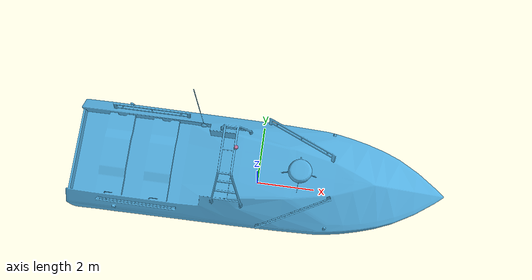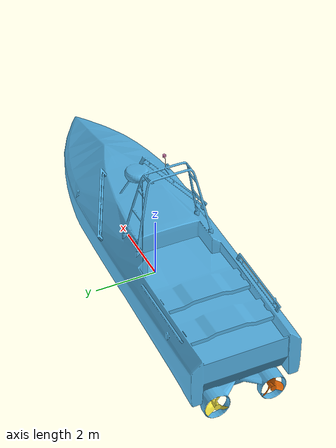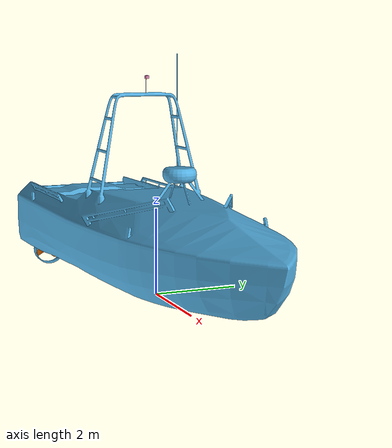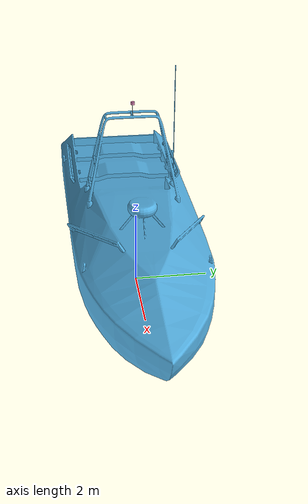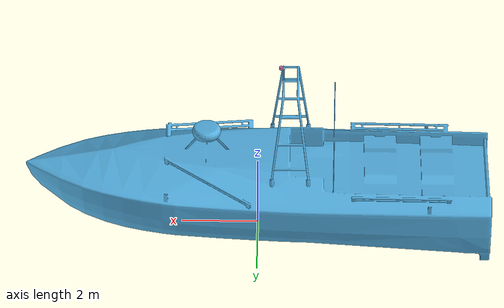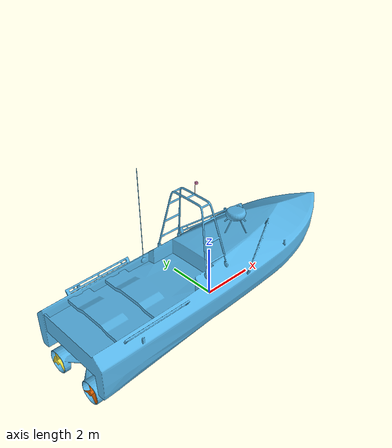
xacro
<?xml version="1.0"?>
<robot xmlns:xacro="http://ros.org/wiki/xacro" name="cora">

  <!-- Arguments and Parameters -->
  <xacro:arg name="camera_namespace" default="cameras/"/>
  <xacro:arg name="sensor_namespace" default="sensors/"/>
  <xacro:arg name="pinger_namespace" default="pingers/"/>
  <xacro:property name="camera_namespace" value="$(arg camera_namespace)" scope="global" />
  <xacro:property name="sensor_namespace" value="$(arg sensor_namespace)" scope="global" />
  <xacro:property name="pinger_namespace" value="$(arg pinger_namespace)" scope="global" />

  <!-- Note: this is only used for some sensors that do not correctly use the
  robotNamespace parameter -->
  <xacro:arg name="namespace" default="cora"/>
  <xacro:property name="namespace" value="$(arg namespace)" scope="global" />

  <!-- Thrusters mess this up - so this is hack - TODO Fix! -->
  <xacro:arg name="root_namespace" default=""/>
  <xacro:property name="root_namespace" value="$(arg root_namespace)" scope="global" />
  <xacro:arg name="thruster_namespace" default="thrusters/"/>
  <xacro:property name="thruster_namespace" value="$(arg thruster_namespace)" scope="global" />

  <xacro:arg name="tf_prefix" default="cora1" />
  <xacro:property name="tf_prefix" value="$(arg tf_prefix)" scope="global" />

  <!-- Robot mesh -->
  <xacro:include filename="$(find mrc_examples)/urdf/cora.urdf.xacro" />

  <!-- Hydrodynamics plugin -->
  <xacro:include filename="$(find mrc_examples)/urdf/cora_dynamics_plugin.xacro" />
  <xacro:usv_dynamics_gazebo name="cora_dynamics_plugin" />

  <!-- Thrusters -->
  <xacro:include filename="$(find mrc_examples)/urdf/thrusters.xacro" />

  <gazebo>
    <plugin name="p3d_plugin_cora" filename="libgazebo_ros_p3d.so">
      <bodyName>${tf_prefix}/cora/base_link</bodyName>
      <frameName>world</frameName>
      <updateRate>10.0</updateRate>
      <topicName>cora/sensors/p3d</topicName>
      <xyzOffset>0 0 0</xyzOffset>
      <rpyOffset>0 0 0</rpyOffset>
      <gaussianNoise>0</gaussianNoise>
    </plugin>
  </gazebo>

  <!-- Lidar -->
  <xacro:include filename="$(find mrc_examples)/urdf/cora_3d_lidar.xacro"/>
  <xacro:cora_3d_lidar name="lidar"
                           x="-0.595" y="0" z="5"
                           R="0" P="${radians(0)}" Y="0"
                           post_Y="0" post_z_from="4.6"
                           vertical_lasers="16"/>

</robot>

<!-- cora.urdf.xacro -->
<robot xmlns:xacro="http://ros.org/wiki/xacro" name="cora">

  <link name="${tf_prefix}/cora/base_link">
  </link>

  <joint name="${tf_prefix}/cora/dummy_joint" type="fixed">
    <parent link="${tf_prefix}/cora/base_link"/>
    <child link="${tf_prefix}/cora/dummy_link"/>
    <!-- Adjust the visual/collision to match water height -->
    <origin xyz="0 0 1" rpy="0 0 0"/>
  </joint>

  <link name="${tf_prefix}/cora/dummy_link">
    <visual>
      <origin xyz="0 0 0" rpy="0 0 0" />
      <geometry>
        <mesh filename="package://cora_description/models/meshes/base.dae"/>
      </geometry>
      <material name="base_material">
        <diffuse>1.0 1.0 1.0</diffuse>
        <specular>1.0 1.0 1.0</specular>
        <pbr>
          <metal>
            <albedo_map>package://cora_description/models/materials/textures/Boat_Albedo.png</albedo_map>
            <metalness_map>package://cora_description/models/materials/textures/Boat_Metalness.png</metalness_map>
            <roughness_map>package://cora_description/models/materials/textures/Boat_Roughness.png</roughness_map>
          </metal>
        </pbr>
        <!-- fallback to script if no PBR support-->
        <script>
          <uri>package://cora_description/models/materials/scripts/</uri>
          <uri>package://cora_description/models/materials/textures/</uri>
          <name>UrbanTile/Boat_Diffuse</name>
        </script>
      </material>
    </visual>

    <collision name="collision">
      <geometry>
        <box size="12.21 3.58 2.84" />
      </geometry>
    </collision>

    <inertial>
       <mass value="33000.0"/>
       <inertia ixx="20700.0" ixy="0.0" ixz="0.0" iyy="420000.0" iyz="0.0" izz="420000.0"/>
    </inertial>
  </link>

</robot>

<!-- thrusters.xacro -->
<robot xmlns:xacro="http://ros.org/wiki/xacro">

  <!-- Dummy link, which usv_gazebo_thrust_plugin looks for -->
  <link name="${tf_prefix}/${namespace}/left_engine_link">
    <inertial>
      <mass value="0.1"/>
      <inertia ixx="0.00889245" ixy="0.0" ixz="0.0" iyy="0.00911125" iyz="0.0" izz="0.00078125"/>
    </inertial>
  </link>

  <!-- No additional collision, since propeller is inside robot body -->
  <link name="${tf_prefix}/${namespace}/left_propeller_link">
    <visual>
      <geometry>
        <mesh filename="package://cora_description/models/meshes/propellerL.dae"/>
      </geometry>
      <material name="left_propeller_material">
        <diffuse>1.0 1.0 1.0</diffuse>
        <specular>1.0 1.0 1.0</specular>
        <pbr>
          <metal>
            <albedo_map>package://cora_description/models/materials/textures/Boat_Albedo.png</albedo_map>
            <metalness_map>package://cora_description/models/materials/textures/Boat_Metalness.png</metalness_map>
            <roughness_map>package://cora_description/models/materials/textures/Boat_Roughness.png</roughness_map>
          </metal>
        </pbr>
        <!-- fallback to script if no PBR support-->
        <script>
          <uri>package://cora_description/models/materials/scripts/</uri>
          <uri>package://cora_description/models/materials/textures/</uri>
          <name>UrbanTile/Boat_Diffuse</name>
        </script>
      </material>
    </visual>
    <inertial>
      <mass value="0.5"/>
      <inertia ixx="0.008545" ixy="0.0" ixz="0.0" iyy="0.008545" iyz="0.0" izz="0.0144"/>
    </inertial>
  </link>

  <!-- Dummy joint, which usv_gazebo_thrust_plugin looks for -->
  <joint name="${tf_prefix}/${namespace}/left_chasis_engine_joint" type="revolute">
    <axis xyz="0 0 1"/>
    <origin rpy="0 0 0" xyz="-6.103 0.911 0.016"/>
    <parent link="${tf_prefix}/${namespace}/base_link"/>
    <child link="${tf_prefix}/${namespace}/left_engine_link"/>
    <limit lower="${-pi}" upper="${pi}" effort="10" velocity="10"/>
  </joint>

  <joint name="${tf_prefix}/${namespace}/left_engine_propeller_joint" type="continuous">
    <axis rpy="0 0 0" xyz="1 0 0"/>
    <origin xyz="0 0 0" rpy="0 0 0"/>
    <parent link="${tf_prefix}/${namespace}/left_engine_link"/>
    <child link="${tf_prefix}/${namespace}/left_propeller_link"/>
    <limit effort="100" velocity="100" />
    <dynamics friction="0.05" damping="0.05" />
  </joint>

  <!-- Dummy link, which usv_gazebo_thrust_plugin looks for -->
  <link name="${tf_prefix}/${namespace}/right_engine_link">
    <inertial>
      <mass value="0.1"/>
      <inertia ixx="0.00889245" ixy="0.0" ixz="0.0" iyy="0.00911125" iyz="0.0" izz="0.00078125"/>
    </inertial>
  </link>

  <!-- No additional collision, since propeller is inside robot body -->
  <link name="${tf_prefix}/${namespace}/right_propeller_link">
    <visual>
      <geometry>
        <mesh filename="package://cora_description/models/meshes/propellerR.dae"/>
      </geometry>
      <material name="right_propeller_material">
        <diffuse>1.0 1.0 1.0</diffuse>
        <specular>1.0 1.0 1.0</specular>
        <pbr>
          <metal>
            <albedo_map>package://cora_description/models/materials/textures/Boat_Albedo.png</albedo_map>
            <metalness_map>package://cora_description/models/materials/textures/Boat_Metalness.png</metalness_map>
            <roughness_map>package://cora_description/models/materials/textures/Boat_Roughness.png</roughness_map>
          </metal>
        </pbr>
        <!-- fallback to script if no PBR support-->
        <script>
          <uri>package://cora_description/models/materials/scripts/</uri>
          <uri>package://cora_description/models/materials/textures/</uri>
          <name>UrbanTile/Boat_Diffuse</name>
        </script>
      </material>
    </visual>
    <inertial>
      <mass value="0.5"/>
      <inertia ixx="0.008545" ixy="0.0" ixz="0.0" iyy="0.008545" iyz="0.0" izz="0.0144"/>
    </inertial>
  </link>

  <!-- Dummy joint, which usv_gazebo_thrust_plugin looks for -->
  <joint name="${tf_prefix}/${namespace}/right_chasis_engine_joint" type="revolute">
    <axis xyz="0 0 1"/>
    <origin rpy="0 0 0" xyz="-6.103 -0.911 0.016"/>
    <parent link="${tf_prefix}/${namespace}/base_link"/>
    <child link="${tf_prefix}/${namespace}/right_engine_link"/>
    <limit lower="${-pi}" upper="${pi}" effort="10" velocity="10"/>
  </joint>

  <joint name="${tf_prefix}/${namespace}/right_engine_propeller_joint" type="continuous">
    <axis rpy="0 0 0" xyz="1 0 0"/>
    <origin xyz="0 0 0" rpy="0 0 0"/>
    <parent link="${tf_prefix}/${namespace}/right_engine_link"/>
    <child link="${tf_prefix}/${namespace}/right_propeller_link"/>
    <limit effort="100" velocity="100" />
    <dynamics friction="0.05" damping="0.05" />
  </joint>

  <gazebo>
    <plugin name="cora_gazebo_thrust" filename="libusv_gazebo_thrust_plugin.so">
      <cmdTimeout>1.0</cmdTimeout>
      <!-- Left -->
      <thruster>
	<!-- Required Parameters -->
	<linkName>${tf_prefix}/${namespace}/left_propeller_link</linkName>
	<propJointName>${tf_prefix}/${namespace}/left_engine_propeller_joint</propJointName>
	<engineJointName>${tf_prefix}/${namespace}/left_chasis_engine_joint</engineJointName>
	<cmdTopic>${namespace}/${thruster_namespace}/left_thrust_cmd</cmdTopic>
	<angleTopic>${namespace}/${thruster_namespace}/left_thrust_angle</angleTopic>
	<enableAngle>false</enableAngle>
	<!-- Optional Parameters -->
	<mappingType>0</mappingType>
	<maxCmd>1.0</maxCmd>
	<maxForceFwd>120000.0</maxForceFwd>
	<maxForceRev>-50000.0</maxForceRev>
	<maxAngle>${pi/2}</maxAngle>
      </thruster>

      <!-- Right -->
      <thruster>
	<!-- Required Parameters -->
	<linkName>${tf_prefix}/${namespace}/right_propeller_link</linkName>
	<propJointName>${tf_prefix}/${namespace}/right_engine_propeller_joint</propJointName>
	<engineJointName>${tf_prefix}/${namespace}/right_chasis_engine_joint</engineJointName>
	<cmdTopic>${namespace}/${thruster_namespace}/right_thrust_cmd</cmdTopic>
	<angleTopic>${namespace}/${thruster_namespace}/right_thrust_angle</angleTopic>
	<enableAngle>false</enableAngle>
	<!-- Optional Parameters -->
	<mappingType>0</mappingType>
	<maxCmd>1.0</maxCmd>
	<maxForceFwd>120000.0</maxForceFwd>
	<maxForceRev>-50000.0</maxForceRev>
	<maxAngle>${pi/2}</maxAngle>
      </thruster>

    </plugin>
  </gazebo>

</robot>

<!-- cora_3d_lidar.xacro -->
<robot xmlns:xacro="http://ros.org/wiki/xacro">
  <xacro:macro name="cora_3d_lidar" params="name
                                            x:=0.7 y:=0 z:=1.8
                                            R:=0 P:=0 Y:=0
                                            post_Y:=0 post_z_from:=1.2965
                                            update_rate:=10 vertical_lasers:=16 samples:=1875 resolution:=0.1
                                            min_angle:=${-pi} max_angle:=${pi}
                                            min_vertical_angle:=${-pi/12} max_vertical_angle:=${pi/12}
                                            max_range:=130 noise_stddev:=0.01">
    <!-- Define length variables for link positioning -->
    <xacro:property name="platform_z" value="${post_z_from}"/>
    <xacro:property name="post_to_post_arm_x" value="0.03"/>
    <xacro:property name="post_arm_to_lidar_x" value="0.04"/>
    <xacro:property name="post_arm_to_lidar_z" value="0.05"/>

    <!-- 3d lidar sensor -->
    <link name="${tf_prefix}/${namespace}/${name}_link">
      <visual name="${name}_visual">
        <origin xyz="0 0 -0.035" rpy="0 0 0"/>
        <geometry>
          <mesh filename="package://vrx_gazebo/models/3d_lidar/mesh/3d_lidar.dae"/>
        </geometry>
      </visual>
      <collision name="${name}_collision">
        <geometry>
          <cylinder radius="0.055" length="0.075"/>
        </geometry>
      </collision>
      <inertial>
        <mass value="1"/>
        <inertia
          ixx="0.00109375"
          iyy="0.00109375"
          izz="0.00125"
          ixy="0"
          ixz="0"
          iyz="0"/>
      </inertial>
    </link>

    <!-- Define post length and mass based on desired z position of sensor -->
    <xacro:property name="post_length" value="${z-platform_z-post_arm_to_lidar_z}"/>
    <xacro:property name="post_mass_per_meter" value="0.9"/>
    <xacro:property name="post_mass" value="${post_mass_per_meter * post_length}"/>
    <xacro:property name="post_radius" value="0.0076"/>

    <!-- Sensor post -->
    <link name="${tf_prefix}/${namespace}/${name}_post_link">
      <visual>
        <geometry>
          <cylinder radius="${post_radius}" length="${post_length}"/>
        </geometry>
        <material name="${name}_post_material">
          <color rgba="0.0 0.0 0.0 1.0"/>
        </material>
      </visual>
      <collision name="${name}_post_collision">
        <geometry>
          <cylinder radius="${post_radius}" length="${post_length}"/>
        </geometry>
      </collision>
      <inertial>
        <mass value="${post_mass}"/>
        <inertia
          ixx="${(post_mass/12) * (3*post_radius*post_radius + post_length*post_length)}"
          iyy="${(post_mass/12) * (3*post_radius*post_radius + post_length*post_length)}"
          izz="${(post_mass/2) * (post_radius*post_radius)}"
          ixy="0"
          ixz="0"
          iyz="0"/>
      </inertial>
    </link>

    <!-- Sensor post arm -->
    <link name="${tf_prefix}/${namespace}/${name}_post_arm_link">
      <visual name="${name}_post_arm_visual">
        <origin xyz="-0.038 0 -0.003" rpy="${radians(-60)} 0 ${-pi/2}"/>
        <geometry>
          <mesh filename="package://vrx_gazebo/models/sensor_post/mesh/sensor_post_arm.dae"/>
        </geometry>
      </visual>
      <collision name="${name}_post_arm_collision">
        <origin xyz="0 0 0" rpy="${radians(-60)-pi/20} 0 ${-pi/2}"/>
        <geometry>
          <cylinder radius="0.008" length="0.065"/>
        </geometry>
      </collision>
      <inertial>
        <origin xyz="0 0 0" rpy="${radians(-60)-pi/20} 0 ${-pi/2}"/>
        <mass value="0.1"/>
        <inertia
          ixx="0.00003680833"
          iyy="0.00003680833"
          izz="0.00000320000"
          ixy="0"
          ixz="0"
          iyz="0"/>
      </inertial>
    </link>

    <!-- Base to sensor post joint -->
    <xacro:property name="post_z" value="${platform_z+post_length/2}"/>
    <xacro:property name="post_to_lidar_x" value="${post_to_post_arm_x+post_arm_to_lidar_x}"/>
    <joint name="${tf_prefix}/${namespace}/base_to_${name}_post_joint" type="fixed">
      <origin xyz="${x-(post_to_lidar_x)*cos(post_Y)} ${y-(post_to_lidar_x)*sin(post_Y)} ${post_z}" rpy="0 0 ${post_Y}" />
      <parent link="${tf_prefix}/${namespace}/base_link" />
      <child link="${tf_prefix}/${namespace}/${name}_post_link" />
    </joint>

    <!-- Sensor post to sensor post arm joint -->
    <joint name="${tf_prefix}/${namespace}/${name}_post_to_${name}_post_arm_joint" type="fixed">
      <origin xyz="${post_to_post_arm_x} 0 ${z-post_z-post_arm_to_lidar_z}" rpy="0 0 0" />
      <parent link="${tf_prefix}/${namespace}/${name}_post_link" />
      <child link="${tf_prefix}/${namespace}/${name}_post_arm_link" />
    </joint>

    <!-- Sensor post arm to lidar joint -->
    <joint name="${tf_prefix}/${namespace}/${name}_post_arm_to_${name}_joint" type="fixed">
      <origin xyz="${post_arm_to_lidar_x} 0 ${post_arm_to_lidar_z}" rpy="${R} ${P} ${Y-post_Y}" />
      <parent link="${tf_prefix}/${namespace}/${name}_post_arm_link" />
      <child link="${tf_prefix}/${namespace}/${name}_link" />
    </joint>

    <gazebo reference="${tf_prefix}/${namespace}/${name}_link">
      <sensor type="gpu_ray" name="${name}_sensor">
        <update_rate>${update_rate}</update_rate>
        <ray>
          <scan>
            <horizontal>
              <samples>${samples/resolution}</samples>
              <resolution>${resolution}</resolution>
              <min_angle>${min_angle}</min_angle>
              <max_angle>${max_angle}</max_angle>
            </horizontal>
            <vertical>
              <samples>${vertical_lasers}</samples>
              <resolution>1</resolution>
              <min_angle>${min_vertical_angle}</min_angle>
              <max_angle>${max_vertical_angle}</max_angle>
            </vertical>
          </scan>
          <range>
            <min>0.1</min>
            <max>${max_range}</max>
          </range>
          <noise>
            <type>gaussian</type>
            <mean>0.0</mean>
            <stddev>${noise_stddev}</stddev>
          </noise>
        </ray>
        <plugin name="${name}_plugin" filename="libgazebo_ros_velodyne_gpu_laser.so">
          <topicName>${namespace}/${sensor_namespace}lidars/${name}/points</topicName>
          <frameName>${namespace}/${name}_link</frameName>
          <min_intensity>0</min_intensity>
        </plugin>
      </sensor>
    </gazebo>

    <!-- Set color of post -->
    <gazebo reference="${tf_prefix}/${namespace}/${name}_post_link">
      <material>Gazebo/Black</material>
    </gazebo>
  </xacro:macro>
</robot>
